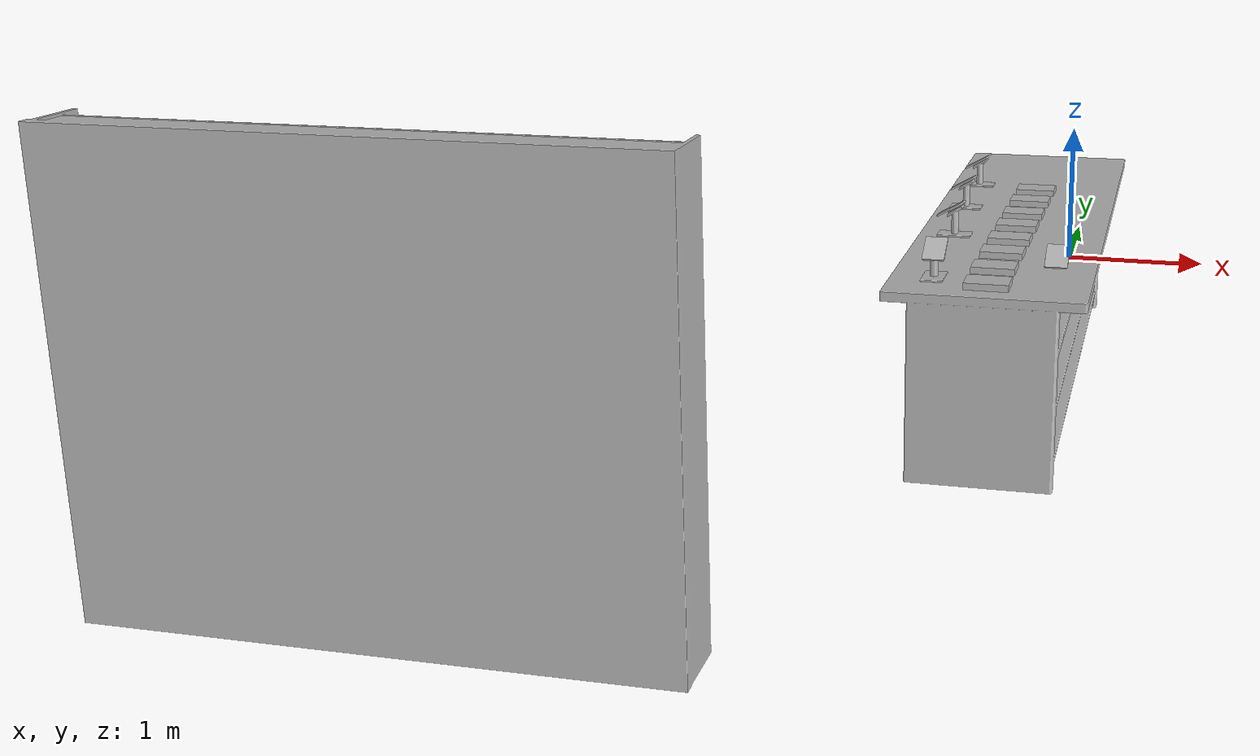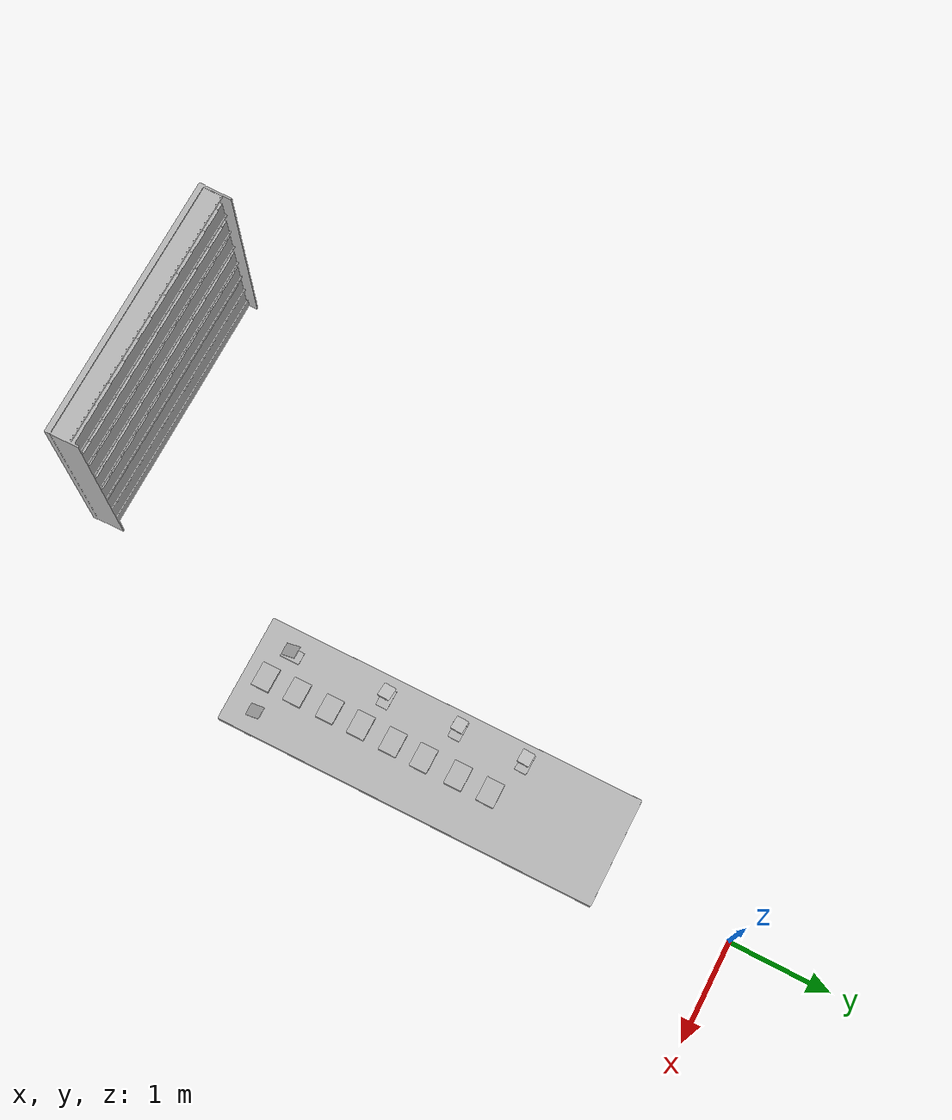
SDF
<sdf version="1.7">
 <world name="default">
  <model name="BookE_01_020">
   <frame name="aws_robomaker_retail_BookE_01::__model__" attached_to="aws_robomaker_retail_BookE_01::link">
    <pose relative_to="__model__">0 0 0 0 -0 0</pose>
   </frame>
   <link name="aws_robomaker_retail_BookE_01::link">
    <inertial>
     <mass>1</mass>
     <inertia><ixy>0</ixy><ixz>0</ixz><iyz>0</iyz><ixx>0.0666</ixx><iyy>0.0346</iyy><izz>0.0986</izz></inertia>
    </inertial>
    <collision name="collision">
     <geometry>
      <mesh>
       <uri>model://aws_robomaker_retail_BookE_01/meshes/aws_BookE_01_collision.DAE</uri>
       <scale>1 1 1</scale>
      </mesh>
     </geometry>
    </collision>
    <visual name="visual">
     <geometry>
      <mesh><uri>model://aws_robomaker_retail_BookE_01/meshes/aws_BookE_01_visual.DAE</uri></mesh>
     </geometry>
    </visual>
    <pose relative_to="aws_robomaker_retail_BookE_01::__model__">0 0 0 0 -0 0</pose>
   </link>
   <static>1</static>
   <pose>-0.040981 -2.44797 1.05383 4e-06 -4e-06 -1.57338</pose>
  </model>
  <model name="BookE_01_021">
   <frame name="aws_robomaker_retail_BookE_01::__model__" attached_to="aws_robomaker_retail_BookE_01::link">
    <pose relative_to="__model__">0 0 0 0 -0 0</pose>
   </frame>
   <link name="aws_robomaker_retail_BookE_01::link">
    <inertial>
     <mass>1</mass>
     <inertia><ixy>0</ixy><ixz>0</ixz><iyz>0</iyz><ixx>0.0666</ixx><iyy>0.0346</iyy><izz>0.0986</izz></inertia>
    </inertial>
    <collision name="collision">
     <geometry>
      <mesh>
       <uri>model://aws_robomaker_retail_BookE_01/meshes/aws_BookE_01_collision.DAE</uri>
       <scale>1 1 1</scale>
      </mesh>
     </geometry>
    </collision>
    <visual name="visual">
     <geometry>
      <mesh><uri>model://aws_robomaker_retail_BookE_01/meshes/aws_BookE_01_visual.DAE</uri></mesh>
     </geometry>
    </visual>
    <pose relative_to="aws_robomaker_retail_BookE_01::__model__">0 0 0 0 -0 0</pose>
   </link>
   <static>1</static>
   <pose>-0.044005 -2.76115 1.05383 4e-06 -4e-06 -1.57338</pose>
  </model>
  <model name="BookE_01_022">
   <frame name="aws_robomaker_retail_BookE_01::__model__" attached_to="aws_robomaker_retail_BookE_01::link">
    <pose relative_to="__model__">0 0 0 0 -0 0</pose>
   </frame>
   <link name="aws_robomaker_retail_BookE_01::link">
    <inertial>
     <mass>1</mass>
     <inertia><ixy>0</ixy><ixz>0</ixz><iyz>0</iyz><ixx>0.0666</ixx><iyy>0.0346</iyy><izz>0.0986</izz></inertia>
    </inertial>
    <collision name="collision">
     <geometry>
      <mesh>
       <uri>model://aws_robomaker_retail_BookE_01/meshes/aws_BookE_01_collision.DAE</uri>
       <scale>1 1 1</scale>
      </mesh>
     </geometry>
    </collision>
    <visual name="visual">
     <geometry>
      <mesh><uri>model://aws_robomaker_retail_BookE_01/meshes/aws_BookE_01_visual.DAE</uri></mesh>
     </geometry>
    </visual>
    <pose relative_to="aws_robomaker_retail_BookE_01::__model__">0 0 0 0 -0 0</pose>
   </link>
   <static>1</static>
   <pose>-0.046637 -3.09718 1.05383 4e-06 -4e-06 -1.57338</pose>
  </model>
  <model name="BookE_01_023">
   <frame name="aws_robomaker_retail_BookE_01::__model__" attached_to="aws_robomaker_retail_BookE_01::link">
    <pose relative_to="__model__">0 0 0 0 -0 0</pose>
   </frame>
   <link name="aws_robomaker_retail_BookE_01::link">
    <inertial>
     <mass>1</mass>
     <inertia><ixy>0</ixy><ixz>0</ixz><iyz>0</iyz><ixx>0.0666</ixx><iyy>0.0346</iyy><izz>0.0986</izz></inertia>
    </inertial>
    <collision name="collision">
     <geometry>
      <mesh>
       <uri>model://aws_robomaker_retail_BookE_01/meshes/aws_BookE_01_collision.DAE</uri>
       <scale>1 1 1</scale>
      </mesh>
     </geometry>
    </collision>
    <visual name="visual">
     <geometry>
      <mesh><uri>model://aws_robomaker_retail_BookE_01/meshes/aws_BookE_01_visual.DAE</uri></mesh>
     </geometry>
    </visual>
    <pose relative_to="aws_robomaker_retail_BookE_01::__model__">0 0 0 0 -0 0</pose>
   </link>
   <static>1</static>
   <pose>-0.049416 -3.40021 1.05383 4e-06 -4e-06 -1.57338</pose>
  </model>
  <model name="BookE_01_024">
   <frame name="aws_robomaker_retail_BookE_01::__model__" attached_to="aws_robomaker_retail_BookE_01::link">
    <pose relative_to="__model__">0 0 0 0 -0 0</pose>
   </frame>
   <link name="aws_robomaker_retail_BookE_01::link">
    <inertial>
     <mass>1</mass>
     <inertia><ixy>0</ixy><ixz>0</ixz><iyz>0</iyz><ixx>0.0666</ixx><iyy>0.0346</iyy><izz>0.0986</izz></inertia>
    </inertial>
    <collision name="collision">
     <geometry>
      <mesh>
       <uri>model://aws_robomaker_retail_BookE_01/meshes/aws_BookE_01_collision.DAE</uri>
       <scale>1 1 1</scale>
      </mesh>
     </geometry>
    </collision>
    <visual name="visual">
     <geometry>
      <mesh><uri>model://aws_robomaker_retail_BookE_01/meshes/aws_BookE_01_visual.DAE</uri></mesh>
     </geometry>
    </visual>
    <pose relative_to="aws_robomaker_retail_BookE_01::__model__">0 0 0 0 -0 0</pose>
   </link>
   <static>1</static>
   <pose>-0.054192 -3.71798 1.05383 4e-06 -4e-06 -1.57338</pose>
  </model>
  <model name="BookE_01_025">
   <frame name="aws_robomaker_retail_BookE_01::__model__" attached_to="aws_robomaker_retail_BookE_01::link">
    <pose relative_to="__model__">0 0 0 0 -0 0</pose>
   </frame>
   <link name="aws_robomaker_retail_BookE_01::link">
    <inertial>
     <mass>1</mass>
     <inertia><ixy>0</ixy><ixz>0</ixz><iyz>0</iyz><ixx>0.0666</ixx><iyy>0.0346</iyy><izz>0.0986</izz></inertia>
    </inertial>
    <collision name="collision">
     <geometry>
      <mesh>
       <uri>model://aws_robomaker_retail_BookE_01/meshes/aws_BookE_01_collision.DAE</uri>
       <scale>1 1 1</scale>
      </mesh>
     </geometry>
    </collision>
    <visual name="visual">
     <geometry>
      <mesh><uri>model://aws_robomaker_retail_BookE_01/meshes/aws_BookE_01_visual.DAE</uri></mesh>
     </geometry>
    </visual>
    <pose relative_to="aws_robomaker_retail_BookE_01::__model__">0 0 0 0 -0 0</pose>
   </link>
   <static>1</static>
   <pose>-0.056891 -4.02587 1.05383 4e-06 -4e-06 -1.57338</pose>
  </model>
  <model name="BookE_01_026">
   <frame name="aws_robomaker_retail_BookE_01::__model__" attached_to="aws_robomaker_retail_BookE_01::link">
    <pose relative_to="__model__">0 0 0 0 -0 0</pose>
   </frame>
   <link name="aws_robomaker_retail_BookE_01::link">
    <inertial>
     <mass>1</mass>
     <inertia><ixy>0</ixy><ixz>0</ixz><iyz>0</iyz><ixx>0.0666</ixx><iyy>0.0346</iyy><izz>0.0986</izz></inertia>
    </inertial>
    <collision name="collision">
     <geometry>
      <mesh>
       <uri>model://aws_robomaker_retail_BookE_01/meshes/aws_BookE_01_collision.DAE</uri>
       <scale>1 1 1</scale>
      </mesh>
     </geometry>
    </collision>
    <visual name="visual">
     <geometry>
      <mesh><uri>model://aws_robomaker_retail_BookE_01/meshes/aws_BookE_01_visual.DAE</uri></mesh>
     </geometry>
    </visual>
    <pose relative_to="aws_robomaker_retail_BookE_01::__model__">0 0 0 0 -0 0</pose>
   </link>
   <static>1</static>
   <pose>-0.059434 -4.35128 1.05383 4e-06 -4e-06 -1.57338</pose>
  </model>
  <model name="BookE_01_027">
   <frame name="aws_robomaker_retail_BookE_01::__model__" attached_to="aws_robomaker_retail_BookE_01::link">
    <pose relative_to="__model__">0 0 0 0 -0 0</pose>
   </frame>
   <link name="aws_robomaker_retail_BookE_01::link">
    <inertial>
     <mass>1</mass>
     <inertia><ixy>0</ixy><ixz>0</ixz><iyz>0</iyz><ixx>0.0666</ixx><iyy>0.0346</iyy><izz>0.0986</izz></inertia>
    </inertial>
    <collision name="collision">
     <geometry>
      <mesh>
       <uri>model://aws_robomaker_retail_BookE_01/meshes/aws_BookE_01_collision.DAE</uri>
       <scale>1 1 1</scale>
      </mesh>
     </geometry>
    </collision>
    <visual name="visual">
     <geometry>
      <mesh><uri>model://aws_robomaker_retail_BookE_01/meshes/aws_BookE_01_visual.DAE</uri></mesh>
     </geometry>
    </visual>
    <pose relative_to="aws_robomaker_retail_BookE_01::__model__">0 0 0 0 -0 0</pose>
   </link>
   <static>1</static>
   <pose>-0.05398 -4.66203 1.05383 4e-06 -4e-06 -1.57338</pose>
  </model>
  <model name="BookshelfB_01_002">
   <frame name="aws_robomaker_retail_BookshelfB_01::__model__" attached_to="aws_robomaker_retail_BookshelfB_01::link">
    <pose relative_to="__model__">0 0 0 0 -0 0</pose>
   </frame>
   <link name="aws_robomaker_retail_BookshelfB_01::link">
    <inertial>
     <mass>50</mass>
     <inertia><ixx>19.8742</ixx><ixy>0</ixy><ixz>0</ixz><iyy>49.1263</iyy><iyz>0</iyz><izz>30.2231</izz></inertia>
    </inertial>
    <collision name="collision">
     <geometry>
      <mesh>
       <uri>model://aws_robomaker_retail_BookshelfB_01/meshes/aws_BookshelfB_01_collision.DAE</uri>
       <scale>1 1 1</scale>
      </mesh>
     </geometry>
    </collision>
    <visual name="visual">
     <geometry>
      <mesh><uri>model://aws_robomaker_retail_BookshelfB_01/meshes/aws_BookshelfB_01_visual.DAE</uri></mesh>
     </geometry>
    </visual>
    <pose relative_to="aws_robomaker_retail_BookshelfB_01::__model__">0 0 0 0 -0 0</pose>
   </link>
   <static>1</static>
   <pose>-2.20941 -6.97146 0.017074 -0.000128 -0.000252 0.000364</pose>
  </model>
  <model name="DeskA_01_004">
   <frame name="aws_robomaker_retail_DeskA_01::__model__" attached_to="aws_robomaker_retail_DeskA_01::link">
    <pose relative_to="__model__">0 0 0 0 -0 0</pose>
   </frame>
   <link name="aws_robomaker_retail_DeskA_01::link">
    <inertial>
     <mass>20</mass>
     <inertia><ixx>3.49717</ixx><ixy>0</ixy><ixz>0</ixz><iyy>23.5599</iyy><iyz>0</iyz><izz>23.5702</izz></inertia>
    </inertial>
    <collision name="collision">
     <geometry>
      <mesh>
       <uri>model://aws_robomaker_retail_DeskA_01/meshes/aws_DeskA_01_collision.DAE</uri>
       <scale>1 1 1</scale>
      </mesh>
     </geometry>
    </collision>
    <visual name="visual">
     <geometry>
      <mesh><uri>model://aws_robomaker_retail_DeskA_01/meshes/aws_DeskA_01_visual.DAE</uri></mesh>
     </geometry>
    </visual>
    <pose relative_to="aws_robomaker_retail_DeskA_01::__model__">0 0 0 0 -0 0</pose>
   </link>
   <static>1</static>
   <pose>-0.062003 -3.0594 0.014866 0 0 -1.5661</pose>
  </model>
  <model name="TabletB_01_003">
   <frame name="aws_robomaker_retail_TabletB_01::__model__" attached_to="aws_robomaker_retail_TabletB_01::link">
    <pose relative_to="__model__">0 0 0 0 -0 0</pose>
   </frame>
   <link name="aws_robomaker_retail_TabletB_01::link">
    <inertial>
     <mass>0.161</mass>
     <inertia>
      <ixx>0.346954</ixx>
      <ixy>0</ixy>
      <ixz>0</ixz>
      <iyy>0.177288</iyy>
      <iyz>0</iyz>
      <izz>0.521826</izz>
     </inertia>
    </inertial>
    <collision name="collision">
     <geometry>
      <mesh>
       <uri>model://aws_robomaker_retail_TabletB_01/meshes/aws_TabletB_01_collision.DAE</uri>
       <scale>1 1 1</scale>
      </mesh>
     </geometry>
    </collision>
    <visual name="visual">
     <geometry>
      <mesh><uri>model://aws_robomaker_retail_TabletB_01/meshes/aws_TabletB_01_visual.DAE</uri></mesh>
     </geometry>
    </visual>
    <pose relative_to="aws_robomaker_retail_TabletB_01::__model__">0 0 0 0 -0 0</pose>
   </link>
   <static>1</static>
   <pose>-0.340259 -4.55378 1.18472 0.550862 -0.007302 0</pose>
  </model>
  <model name="TabletB_01_004">
   <frame name="aws_robomaker_retail_TabletB_01::__model__" attached_to="aws_robomaker_retail_TabletB_01::link">
    <pose relative_to="__model__">0 0 0 0 -0 0</pose>
   </frame>
   <link name="aws_robomaker_retail_TabletB_01::link">
    <inertial>
     <mass>0.161</mass>
     <inertia>
      <ixx>0.346954</ixx>
      <ixy>0</ixy>
      <ixz>0</ixz>
      <iyy>0.177288</iyy>
      <iyz>0</iyz>
      <izz>0.521826</izz>
     </inertia>
    </inertial>
    <collision name="collision">
     <geometry>
      <mesh>
       <uri>model://aws_robomaker_retail_TabletB_01/meshes/aws_TabletB_01_collision.DAE</uri>
       <scale>1 1 1</scale>
      </mesh>
     </geometry>
    </collision>
    <visual name="visual">
     <geometry>
      <mesh><uri>model://aws_robomaker_retail_TabletB_01/meshes/aws_TabletB_01_visual.DAE</uri></mesh>
     </geometry>
    </visual>
    <pose relative_to="aws_robomaker_retail_TabletB_01::__model__">0 0 0 0 -0 0</pose>
   </link>
   <static>1</static>
   <pose>0.277891 -4.5682 1.18481 0.550862 -0.007302 0</pose>
  </model>
  <model name="TabletB_01_008">
   <frame name="aws_robomaker_retail_TabletB_01::__model__" attached_to="aws_robomaker_retail_TabletB_01::link">
    <pose relative_to="__model__">0 0 0 0 -0 0</pose>
   </frame>
   <link name="aws_robomaker_retail_TabletB_01::link">
    <inertial>
     <mass>0.161</mass>
     <inertia>
      <ixx>0.346954</ixx>
      <ixy>0</ixy>
      <ixz>0</ixz>
      <iyy>0.177288</iyy>
      <iyz>0</iyz>
      <izz>0.521826</izz>
     </inertia>
    </inertial>
    <collision name="collision">
     <geometry>
      <mesh>
       <uri>model://aws_robomaker_retail_TabletB_01/meshes/aws_TabletB_01_collision.DAE</uri>
       <scale>1 1 1</scale>
      </mesh>
     </geometry>
    </collision>
    <visual name="visual">
     <geometry>
      <mesh><uri>model://aws_robomaker_retail_TabletB_01/meshes/aws_TabletB_01_visual.DAE</uri></mesh>
     </geometry>
    </visual>
    <pose relative_to="aws_robomaker_retail_TabletB_01::__model__">0 0 0 0 -0 0</pose>
   </link>
   <static>1</static>
   <pose>-0.393041 -3.63801 1.18472 0.512461 -0.058405 -1.6041</pose>
  </model>
  <model name="TabletB_01_009">
   <frame name="aws_robomaker_retail_TabletB_01::__model__" attached_to="aws_robomaker_retail_TabletB_01::link">
    <pose relative_to="__model__">0 0 0 0 -0 0</pose>
   </frame>
   <link name="aws_robomaker_retail_TabletB_01::link">
    <inertial>
     <mass>0.161</mass>
     <inertia>
      <ixx>0.346954</ixx>
      <ixy>0</ixy>
      <ixz>0</ixz>
      <iyy>0.177288</iyy>
      <iyz>0</iyz>
      <izz>0.521826</izz>
     </inertia>
    </inertial>
    <collision name="collision">
     <geometry>
      <mesh>
       <uri>model://aws_robomaker_retail_TabletB_01/meshes/aws_TabletB_01_collision.DAE</uri>
       <scale>1 1 1</scale>
      </mesh>
     </geometry>
    </collision>
    <visual name="visual">
     <geometry>
      <mesh><uri>model://aws_robomaker_retail_TabletB_01/meshes/aws_TabletB_01_visual.DAE</uri></mesh>
     </geometry>
    </visual>
    <pose relative_to="aws_robomaker_retail_TabletB_01::__model__">0 0 0 0 -0 0</pose>
   </link>
   <static>1</static>
   <pose>-0.419809 -2.94227 1.18472 0.512461 -0.058405 -1.6041</pose>
  </model>
  <model name="TabletB_01_010">
   <frame name="aws_robomaker_retail_TabletB_01::__model__" attached_to="aws_robomaker_retail_TabletB_01::link">
    <pose relative_to="__model__">0 0 0 0 -0 0</pose>
   </frame>
   <link name="aws_robomaker_retail_TabletB_01::link">
    <inertial>
     <mass>0.161</mass>
     <inertia>
      <ixx>0.346954</ixx>
      <ixy>0</ixy>
      <ixz>0</ixz>
      <iyy>0.177288</iyy>
      <iyz>0</iyz>
      <izz>0.521826</izz>
     </inertia>
    </inertial>
    <collision name="collision">
     <geometry>
      <mesh>
       <uri>model://aws_robomaker_retail_TabletB_01/meshes/aws_TabletB_01_collision.DAE</uri>
       <scale>1 1 1</scale>
      </mesh>
     </geometry>
    </collision>
    <visual name="visual">
     <geometry>
      <mesh><uri>model://aws_robomaker_retail_TabletB_01/meshes/aws_TabletB_01_visual.DAE</uri></mesh>
     </geometry>
    </visual>
    <pose relative_to="aws_robomaker_retail_TabletB_01::__model__">0 0 0 0 -0 0</pose>
   </link>
   <static>1</static>
   <pose>-0.422525 -2.30139 1.18472 0.512461 -0.058405 -1.6041</pose>
  </model>
  <model name="Holder_01_001">
   <frame name="aws_robomaker_retail_Holder_01::__model__" attached_to="aws_robomaker_retail_Holder_01::link">
    <pose relative_to="__model__">0 0 0 0 -0 0</pose>
   </frame>
   <link name="aws_robomaker_retail_Holder_01::link">
    <inertial><mass>1</mass></inertial>
    <collision name="collision">
     <geometry>
      <mesh>
       <uri>model://aws_robomaker_retail_Holder_01/meshes/aws_Holder_01_collision.DAE</uri>
       <scale>1 1 1</scale>
      </mesh>
     </geometry>
    </collision>
    <visual name="visual">
     <geometry>
      <mesh><uri>model://aws_robomaker_retail_Holder_01/meshes/aws_Holder_01_visual.DAE</uri></mesh>
     </geometry>
    </visual>
    <pose relative_to="aws_robomaker_retail_Holder_01::__model__">0 0 0 0 -0 0</pose>
   </link>
   <static>1</static>
   <pose>-0.342764 -4.5564 1.03776 0 -0 0</pose>
  </model>
  <model name="Holder_01_016">
   <frame name="aws_robomaker_retail_Holder_01::__model__" attached_to="aws_robomaker_retail_Holder_01::link">
    <pose relative_to="__model__">0 0 0 0 -0 0</pose>
   </frame>
   <link name="aws_robomaker_retail_Holder_01::link">
    <inertial><mass>1</mass></inertial>
    <collision name="collision">
     <geometry>
      <mesh>
       <uri>model://aws_robomaker_retail_Holder_01/meshes/aws_Holder_01_collision.DAE</uri>
       <scale>1 1 1</scale>
      </mesh>
     </geometry>
    </collision>
    <visual name="visual">
     <geometry>
      <mesh><uri>model://aws_robomaker_retail_Holder_01/meshes/aws_Holder_01_visual.DAE</uri></mesh>
     </geometry>
    </visual>
    <pose relative_to="aws_robomaker_retail_Holder_01::__model__">0 0 0 0 -0 0</pose>
   </link>
   <static>1</static>
   <pose>-0.372977 -3.63719 1.03776 0 0 -1.58865</pose>
  </model>
  <model name="Holder_01_017">
   <frame name="aws_robomaker_retail_Holder_01::__model__" attached_to="aws_robomaker_retail_Holder_01::link">
    <pose relative_to="__model__">0 0 0 0 -0 0</pose>
   </frame>
   <link name="aws_robomaker_retail_Holder_01::link">
    <inertial><mass>1</mass></inertial>
    <collision name="collision">
     <geometry>
      <mesh>
       <uri>model://aws_robomaker_retail_Holder_01/meshes/aws_Holder_01_collision.DAE</uri>
       <scale>1 1 1</scale>
      </mesh>
     </geometry>
    </collision>
    <visual name="visual">
     <geometry>
      <mesh><uri>model://aws_robomaker_retail_Holder_01/meshes/aws_Holder_01_visual.DAE</uri></mesh>
     </geometry>
    </visual>
    <pose relative_to="aws_robomaker_retail_Holder_01::__model__">0 0 0 0 -0 0</pose>
   </link>
   <static>1</static>
   <pose>-0.407984 -2.94595 1.03776 0 0 -1.58865</pose>
  </model>
  <model name="Holder_01_018">
   <frame name="aws_robomaker_retail_Holder_01::__model__" attached_to="aws_robomaker_retail_Holder_01::link">
    <pose relative_to="__model__">0 0 0 0 -0 0</pose>
   </frame>
   <link name="aws_robomaker_retail_Holder_01::link">
    <inertial><mass>1</mass></inertial>
    <collision name="collision">
     <geometry>
      <mesh>
       <uri>model://aws_robomaker_retail_Holder_01/meshes/aws_Holder_01_collision.DAE</uri>
       <scale>1 1 1</scale>
      </mesh>
     </geometry>
    </collision>
    <visual name="visual">
     <geometry>
      <mesh><uri>model://aws_robomaker_retail_Holder_01/meshes/aws_Holder_01_visual.DAE</uri></mesh>
     </geometry>
    </visual>
    <pose relative_to="aws_robomaker_retail_Holder_01::__model__">0 0 0 0 -0 0</pose>
   </link>
   <static>1</static>
   <pose>-0.413508 -2.29925 1.03776 0 0 -1.58865</pose>
  </model>
 </world>
</sdf>
